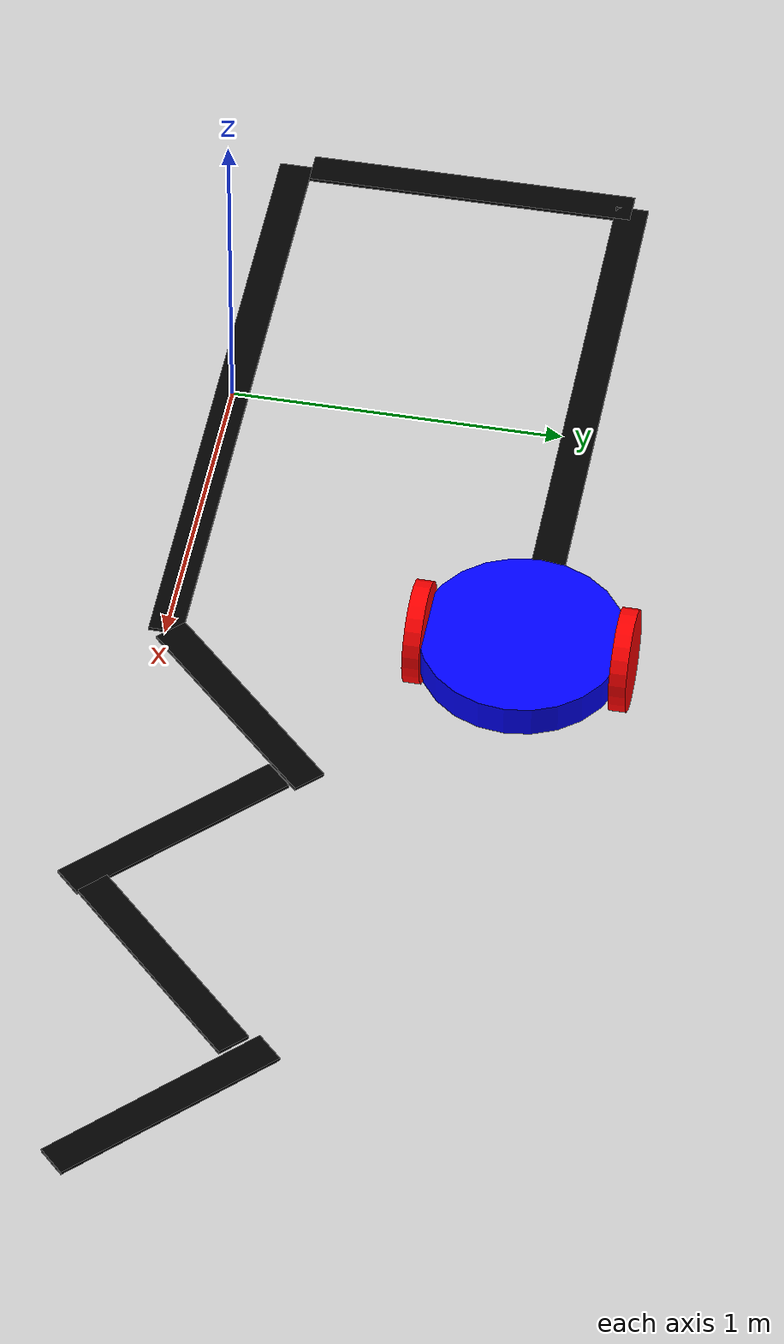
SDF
<?xml version="1.0" ?>
<sdf version="1.8">
    <world name="mwafy_world">
        <physics name="whatever" type="ignored">
            <max_step_size>0.001</max_step_size>
            <real_time_factor>1.0</real_time_factor>
        </physics>
        <plugin
            filename="libignition-gazebo-physics-system.so"
            name="ignition::gazebo::systems::Physics">
        </plugin>
        <plugin
            filename="libignition-gazebo-user-commands-system.so"
            name="ignition::gazebo::systems::UserCommands">
        </plugin>
        <plugin
            filename="libignition-gazebo-scene-broadcaster-system.so"
            name="ignition::gazebo::systems::SceneBroadcaster">
        </plugin>
	<plugin filename="libignition-gazebo-imu-system.so"
	        name="ignition::gazebo::systems::Imu">
	</plugin>
    	<plugin
      		filename="libignition-gazebo-sensors-system.so"
      		name="ignition::gazebo::systems::Sensors">
     		<render_engine>ogre2</render_engine>
   	</plugin>
        <light type="directional" name="sun">
            <cast_shadows>true</cast_shadows>
            <pose>0 0 10 0 0 0</pose>
            <diffuse>0.8 0.8 0.8 1</diffuse>
            <specular>0.2 0.2 0.2 1</specular>
            <attenuation>
                <range>1000</range>
                <constant>0.9</constant>
                <linear>0.01</linear>
                <quadratic>0.001</quadratic>
            </attenuation>
            <direction>-0.5 0.1 -0.9</direction>
        </light>

        <model name="ground_plane">
            <static>true</static>
            <link name="ground">
                <collision name="collision">
                <geometry>
                    <plane>
                    <normal>0 0 1</normal>
                    </plane>
                </geometry>
                </collision>
                <visual name="visual">
                <geometry>
                    <plane>
                    <normal>0 0 1</normal>
                    <size>100 100</size>
                    </plane>
                </geometry>
                <material>
                    <ambient>0.8 0.8 0.8 1</ambient>
                    <diffuse>0.8 0.8 0.8 1</diffuse>
                    <specular>0.8 0.8 0.8 1</specular>
                </material>
                </visual>
            </link>
        </model>
  <model name="black_line_maze">
    <static>true</static>
    <link name="maze_link">

      <!-- === U-SHAPE START === -->

      <!-- Bottom horizontal -->
      <visual name="u_seg1">
        <pose>0 0 0.005 0 0 0</pose>
        <geometry>
          <box>
            <size>2.0 0.1 0.01</size>
          </box>
        </geometry>
        <material><ambient>0 0 0 1</ambient><diffuse>0 0 0 1</diffuse></material>
      </visual>

      <!-- Left vertical -->
      <visual name="u_seg2">
        <pose>-1.0 0.55 0.005 0 0 0</pose>
        <geometry>
          <box>
            <size>0.1 1.0 0.01</size>
          </box>
        </geometry>
        <material><ambient>0 0 0 1</ambient><diffuse>0 0 0 1</diffuse></material>
      </visual>

      <!-- Top horizontal -->
      <visual name="u_seg3">
        <pose>0 1.05 0.005 0 0 0</pose>
        <geometry>
          <box>
            <size>2.0 0.1 0.01</size>
          </box>
        </geometry>
        <material><ambient>0 0 0 1</ambient><diffuse>0 0 0 1</diffuse></material>
      </visual>

      <!-- === CONNECTED ZIG-ZAG === -->
      <!-- Each zigzag segment length is sqrt( (0.5^2) + (0.5^2) ) + a bit for width, so 0.72 m -->
      <!-- First diagonal -->
      <visual name="zig1">
        <pose>1.25 0.27 0.005 0 0 0.785398</pose>
        <geometry>
          <box>
            <size>0.72 0.1 0.01</size>
          </box>
        </geometry>
        <material><ambient>0 0 0 1</ambient><diffuse>0 0 0 1</diffuse></material>
      </visual>

      <!-- Second diagonal -->
      <visual name="zig2">
        <pose>1.75 0.18 0.005 0 0 -0.785398</pose>
        <geometry>
          <box>
            <size>0.72 0.1 0.01</size>
          </box>
        </geometry>
        <material><ambient>0 0 0 1</ambient><diffuse>0 0 0 1</diffuse></material>
      </visual>

      <!-- Third diagonal -->
      <visual name="zig3">
        <pose>2.25 0.25 0.005 0 0 0.785398</pose>
        <geometry>
          <box>
            <size>0.72 0.1 0.01</size>
          </box>
        </geometry>
        <material><ambient>0 0 0 1</ambient><diffuse>0 0 0 1</diffuse></material>
      </visual>

      <!-- Fourth diagonal -->
      <visual name="zig4">
        <pose>2.75 0.35 0.005 0 0 -0.785398</pose>
        <geometry>
          <box>
            <size>0.72 0.1 0.01</size>
          </box>
        </geometry>
        <material><ambient>0 0 0 1</ambient><diffuse>0 0 0 1</diffuse></material>
      </visual>

    </link>
  </model>
        <model name="my_robot" canonical_link='chassis'>
        <pose relative_to='world'>1 1.05 0 0 0 3.14159</pose> <!-- π radians -->
            <link name="chassis">
                <pose relative_to='__model__'>0 0 0.15 0 0 0</pose>
                <visual name='visual'>
                    <geometry>
                        <cylinder>
                            <radius>0.3</radius>
                            <length>0.1</length>
                        </cylinder>
                    </geometry>
                    <material>
                        <ambient>0.0 0.0 1.0 1</ambient>
                        <diffuse>0.0 0.0 1.0 1</diffuse>
                        <specular>0.0 0.0 1.0 1</specular>
                    </material>
                </visual>

                <collision name='collision'>
                    <geometry>
                        <cylinder>
                            <radius>0.3</radius>
                            <length>0.1</length>
                        </cylinder>
                    </geometry>
                </collision>
                <inertial> <!--inertial properties of the link mass, inertia matix-->
                    <mass>1.14395</mass>
                    <inertia>
                        <ixx>0.095329</ixx>
                        <ixy>0</ixy>
                        <ixz>0</ixz>
                        <iyy>0.381317</iyy>
                        <iyz>0</iyz>
                        <izz>0.476646</izz>
                    </inertia>
                </inertial>
                <sensor name="imu_sensor" type="imu">
                    <always_on>1</always_on>
                    <update_rate>1</update_rate>
                    <visualize>false</visualize>
                    <topic>imu</topic>
                </sensor>
		<sensor name='gpu_lidar' type='gpu_lidar'>"
    			<pose relative_to='lidar_frame'>0 0 0 0 0 0</pose>
    			<topic>lidar</topic>
    			<update_rate>10</update_rate>
    			<ray>
        			<scan>
            				<horizontal>
                				<samples>640</samples>
                				<resolution>1</resolution>
                				<min_angle>-1.396263</min_angle>
                				<max_angle>1.396263</max_angle>
            				</horizontal>
            				<vertical>
                				<samples>1</samples>
                				<resolution>0.01</resolution>
                				<min_angle>0</min_angle>
                				<max_angle>0</max_angle>
            				</vertical>
        			</scan>
        			<range>
            				<min>0.08</min>
            				<max>20.0</max>
            				<resolution>0.01</resolution>
        			</range>
    			</ray>
    			<always_on>1</always_on>
    			<visualize>false</visualize>
	    </sensor>
            <sensor name='front_camera_sensor' type='camera'>
                <pose relative_to="chassis">0.4 0 -0.3 0 0.0 0</pose>
                <topic>camera</topic>
                <update_rate>30</update_rate>
                <enable_metrics>false</enable_metrics>
                <camera name='camera'>
                    <pose>0 0 0 0 0 0</pose>
                    <horizontal_fov>1.3962600000000001</horizontal_fov>
                    <image>
                    <width>800</width>
                    <height>800</height>
                    <format>RGB_INT8</format>
                    <anti_aliasing>4</anti_aliasing>
                    </image>
                    <camera_info_topic>__default__</camera_info_topic>
                    <trigger_topic></trigger_topic>
                    <triggered>false</triggered>
                    <clip>
                    <near>0.02</near>
                    <far>300</far>
                    </clip>
                    <save enabled='false'>
                    <path>__default__</path>
                    </save>
                    <visibility_mask>4294967295</visibility_mask>
                    <noise>
                    <type>gaussian</type>
                    <mean>0</mean>
                    <stddev>0.0070000000000000001</stddev>
                    </noise>
                    <distortion>
                    <k1>0</k1>
                    <k2>0</k2>
                    <k3>0</k3>
                    <p1>0</p1>
                    <p2>0</p2>
                    <center>0.5 0.5</center>
                    </distortion>
                    <lens>
                    <type>stereographic</type>
                    <scale_to_hfov>true</scale_to_hfov>
                    <cutoff_angle>1.5708</cutoff_angle>
                    <env_texture_size>256</env_texture_size>
                    </lens>
                    <optical_frame_id></optical_frame_id>
                </camera>
            </sensor>
            </link>
            <link name='left_wheel'>
                <pose relative_to="chassis">0 0.3 0 1.5707 0 0</pose>
                <inertial>
                    <mass>1</mass>
                    <inertia>
                        <ixx>0.043333</ixx>
                        <ixy>0</ixy>
                        <ixz>0</ixz>
                        <iyy>0.043333</iyy>
                        <iyz>0</iyz>
                        <izz>0.08</izz>
                    </inertia>
                </inertial>
                <visual name='visual'>
                    <geometry>
                        <cylinder>
                            <radius>0.15</radius>
                            <length>0.05</length>
                        </cylinder>
                    </geometry>
                    <material>
                        <ambient>1.0 0.0 0.0 1</ambient>
                        <diffuse>1.0 0.0 0.0 1</diffuse>
                        <specular>1.0 0.0 0.0 1</specular>
                    </material>
                </visual>
                <collision name='collision'>
                    <geometry>
                        <cylinder>
                            <radius>0.15</radius>
                            <length>0.05</length>
                        </cylinder>
                    </geometry>
                </collision>
            </link>
            <link name='right_wheel'>
                <pose relative_to="chassis">0 -0.3 0 1.5707 0 0</pose>
                <inertial>
                    <mass>1</mass>
                    <inertia>
                        <ixx>0.043333</ixx>
                        <ixy>0</ixy>
                        <ixz>0</ixz>
                        <iyy>0.043333</iyy>
                        <iyz>0</iyz>
                        <izz>0.08</izz>
                    </inertia>
                </inertial>
                <visual name='visual'>
                    <geometry>
                        <cylinder>
                            <radius>0.15</radius>
                            <length>0.05</length>
                        </cylinder>
                    </geometry>
                    <material>
                        <ambient>1.0 0.0 0.0 1</ambient>
                        <diffuse>1.0 0.0 0.0 1</diffuse>
                        <specular>1.0 0.0 0.0 1</specular>
                    </material>
                </visual>
                <collision name='collision'>
                    <geometry>
                        <cylinder>
                            <radius>0.15</radius>
                            <length>0.05</length>
                        </cylinder>
                    </geometry>
                </collision>
            </link>
            <joint name='left_wheel_joint' type='revolute'>
                <pose relative_to='left_wheel'/>
                <parent>chassis</parent>
                <child>left_wheel</child>
                <axis>
                    <xyz expressed_in='__model__'>0 1 0</xyz> <!--can be defined as any frame or even arbitrary frames-->
                    <limit>
                        <lower>-1.79769e+308</lower>    <!--negative infinity-->
                        <upper>1.79769e+308</upper>     <!--positive infinity-->
                    </limit>
                </axis>
            </joint>
            <joint name='right_wheel_joint' type='revolute'>
                <pose relative_to='right_wheel'/>
                <parent>chassis</parent>
                <child>right_wheel</child>
                <axis>
                    <xyz expressed_in='__model__'>0 1 0</xyz> <!--can be defined as any frame or even arbitrary frames-->
                    <limit>
                        <lower>-1.79769e+308</lower>    <!--negative infinity-->
                        <upper>1.79769e+308</upper>     <!--positive infinity-->
                    </limit>
                </axis>
            </joint>
            <frame name="caster_frame" attached_to='chassis'>
                <pose>0.2 0 -0.05 0 0 0</pose>
            </frame>
            <link name='caster'>
                <pose relative_to='caster_frame'/>
                <inertial>
                    <mass>1</mass>
                    <inertia>
                        <ixx>0.016</ixx>
                        <ixy>0</ixy>
                        <ixz>0</ixz>
                        <iyy>0.016</iyy>
                        <iyz>0</iyz>
                        <izz>0.016</izz>
                    </inertia>
                </inertial>
                <visual name='visual'>
                    <geometry>
                        <sphere>
                            <radius>0.1</radius>
                        </sphere>
                    </geometry>
                    <material>
                        <ambient>0.0 1 0.0 1</ambient>
                        <diffuse>0.0 1 0.0 1</diffuse>
                        <specular>0.0 1 0.0 1</specular>
                    </material>
                </visual>
                <collision name='collision'>
                    <geometry>
                        <sphere>
                            <radius>0.1</radius>
                        </sphere>
                    </geometry>
                </collision>
            </link>
            <joint name='caster_wheel_joint' type='ball'>
            <parent>chassis</parent>
            <child>caster</child>
            </joint>
         <frame name="lidar_frame" attached_to='chassis'>
            <pose>0.8 0 0.5 0 0 0</pose>
        </frame>
          <plugin
                filename="libignition-gazebo-diff-drive-system.so"
                name="ignition::gazebo::systems::DiffDrive">
                <left_joint>left_wheel_joint</left_joint>
                <right_joint>right_wheel_joint</right_joint>
                <wheel_separation>0.6</wheel_separation>
                <wheel_radius>0.15</wheel_radius>
                <odom_publish_frequency>1</odom_publish_frequency>
                <topic>cmd_vel</topic>
            </plugin>
            <plugin filename="libignition-gazebo-triggered-publisher-system.so"
                    name="ignition::gazebo::systems::TriggeredPublisher">
                <input type="ignition.msgs.Int32" topic="/keyboard/keypress">
                    <match field="data">87</match>
                </input>
                <output type="ignition.msgs.Twist" topic="/cmd_vel">
                    linear: {x: 0.5}, angular: {z: 0.0}
                </output>
            </plugin>
            <plugin filename="libignition-gazebo-triggered-publisher-system.so"
                    name="ignition::gazebo::systems::TriggeredPublisher">
                <input type="ignition.msgs.Int32" topic="/keyboard/keypress">
                    <match field="data">65</match>
                </input>
                <output type="ignition.msgs.Twist" topic="/cmd_vel">
                    linear: {x: 0.0}, angular: {z: 0.5}
                </output>
            </plugin>
            <plugin filename="libignition-gazebo-triggered-publisher-system.so"
                    name="ignition::gazebo::systems::TriggeredPublisher">
                <input type="ignition.msgs.Int32" topic="/keyboard/keypress">
                    <match field="data">83</match>
                </input>
                <output type="ignition.msgs.Twist" topic="/cmd_vel">
                    linear: {x: -0.5}, angular: {z: 0.0}
                </output>
            </plugin>
            <plugin filename="libignition-gazebo-triggered-publisher-system.so"
                    name="ignition::gazebo::systems::TriggeredPublisher">
                <input type="ignition.msgs.Int32" topic="/keyboard/keypress">
                    <match field="data">68</match>
                </input>
                <output type="ignition.msgs.Twist" topic="/cmd_vel">
                    linear: {x: 0.0}, angular: {z: -0.5}
                </output>
            </plugin>
            <plugin filename="libignition-gazebo-triggered-publisher-system.so"
                    name="ignition::gazebo::systems::TriggeredPublisher">
                <input type="ignition.msgs.Int32" topic="/keyboard/keypress">
                    <match field="data">70</match>
                </input>
                <output type="ignition.msgs.Twist" topic="/cmd_vel">
                    linear: {x: 0.0}, angular: {z: 0.0}
                </output>
            </plugin>
        </model>
    </world>
</sdf>
